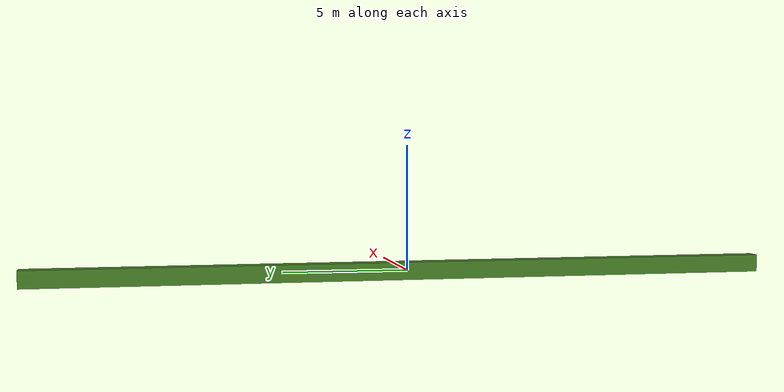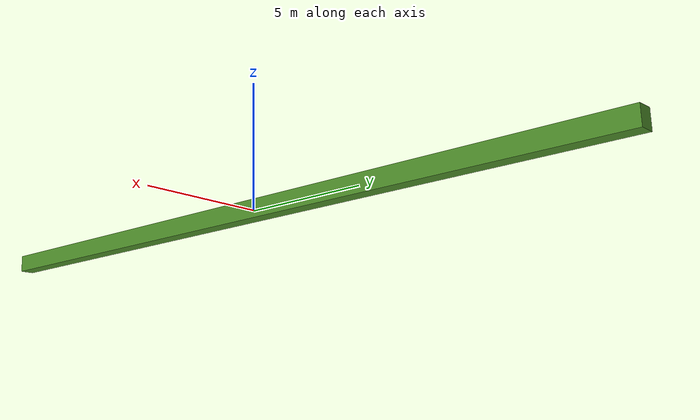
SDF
<?xml version="1.0" ?>
<sdf version="1.9">
  <model name="crop_row">
    <static>true</static>
    <link name="link">
      <visual name="visual">
        <geometry>
          <box><size>0.6 30 0.7</size></box>
        </geometry>
        <material>
          <ambient>0.18 0.32 0.10 1</ambient>
          <diffuse>0.30 0.55 0.16 1</diffuse>
          <specular>0.05 0.05 0.05 1</specular>
        </material>
      </visual>
    </link>
  </model>
</sdf>
